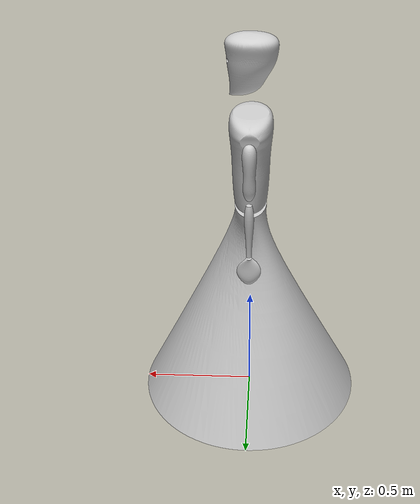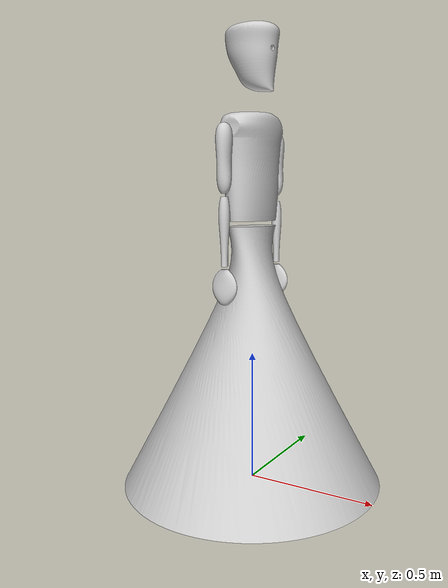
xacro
<?xml version="1.0" ?>

<robot name="human_model" xmlns:xacro="http://www.ros.org/wiki/xacro">

  <link name="world"/>

  <!-- box to world -->
  <joint name="world_joint" type="fixed">
    <origin xyz="0 0 0" rpy="0 0 0"/>
    <parent link="world"/>
    <child link="leg_ws"/>
  </joint>

  <!-- box link -->
  <link name="leg_ws">
    <collision>
      <origin xyz="0 0 0" rpy="0 0 0"/>
      <geometry>
        <mesh filename="package://human_model/meshes/leg_ws.STL" scale="0.001 0.001 0.001"/>
      </geometry>
    </collision>

    <visual>
      <origin xyz="0 0 0" rpy="0 0 0"/>
      <geometry>
        <mesh filename="package://human_model/meshes/leg_ws.STL" scale="0.001 0.001 0.001"/>
      </geometry>
      <material name="grey"/>
    </visual>

    <inertial>
      <mass value="1"/>
      <inertia ixx="100"  ixy="0"  ixz="0" iyy="100" iyz="0" izz="100" />
    </inertial>
  </link>

  <!-- model to box -->
  <joint name="leg_joint" type="fixed">
    <origin xyz="0 0 1.02" rpy="0 0 0"/>
    <parent link="leg_ws"/>
    <child link="body"/>
  </joint>

  <!-- model link -->
  <link name="body">
    <collision>
      <origin xyz="0 0 0" rpy="0 0 0"/>
      <geometry>
        <mesh filename="package://human_model/meshes/Body.STL" scale="0.001 0.001 0.001"/>
      </geometry>
    </collision>

    <visual>
      <origin xyz="0 0 0" rpy="0 0 0"/>
      <geometry>
        <mesh filename="package://human_model/meshes/Body.STL" scale="0.001 0.001 0.001"/>
      </geometry>
      <material name="grey"/>
    </visual>

    <inertial>
      <mass value="1e-5" />
      <origin xyz="0 0 0" rpy="0 0 0"/>
      <inertia ixx="1e-6" ixy="0" ixz="0" iyy="1e-6" iyz="0" izz="1e-6" />
    </inertial>
  </link>

  <!-- head to body -->
  <joint name="neck" type="revolute">
    <origin xyz="0 0 0.5" rpy="0 0 0"/>
    <parent link="body"/>
    <child link="head"/>

    <axis xyz="0 0 1"/>
    <limit effort="30" velocity="1.0" lower="-1.3" upper="1.3" />
  </joint>

  <!-- head link -->
  <link name="head">
    <collision>
      <origin xyz="0 0 0" rpy="0 0 0"/>
      <geometry>
        <mesh filename="package://human_model/meshes/Head.STL" scale="0.001 0.001 0.001"/>
      </geometry>
    </collision>

    <visual>
      <origin xyz="0 0 0" rpy="0 0 0"/>
      <geometry>
        <mesh filename="package://human_model/meshes/head.stl" scale="0.001 0.001 0.001"/>
      </geometry>
      <material name="grey"/>
    </visual>

    <inertial>
      <mass value="1e-5" />
      <origin xyz="0 0 0" rpy="0 0 0"/>
      <inertia ixx="1e-6" ixy="0" ixz="0" iyy="1e-6" iyz="0" izz="1e-6" />
    </inertial>
  </link>

  <!-- =============================LEFT ARM========================================== -->
  <!-- upper to body -->
  <joint name="left_shoulder" type="revolute">
    <origin xyz="0 0.2 0.35" rpy="0 0 0"/>
    <parent link="body"/>
    <child link="left_upper"/>

    <axis xyz="1 0 0"/>
    <limit effort="30" velocity="1.0" lower="-3" upper="3" />
  </joint>

  <!-- upper link -->
  <link name="left_upper">
    <collision>
      <origin xyz="0 0 0" rpy="0 0 0"/>
      <geometry>
        <mesh filename="package://human_model/meshes/Upper.STL" scale="0.001 0.001 0.001"/>
      </geometry>
    </collision>

    <visual>
      <origin xyz="0 0 0" rpy="0 0 0"/>
      <geometry>
        <mesh filename="package://human_model/meshes/Upper.STL" scale="0.001 0.001 0.001"/>
      </geometry>
      <material name="grey"/>
    </visual>

    <inertial>
      <mass value="1e-5" />
      <origin xyz="0 0 0" rpy="0 0 0"/>
      <inertia ixx="1e-6" ixy="0" ixz="0" iyy="1e-6" iyz="0" izz="1e-6" />
    </inertial>
  </link>

  <!-- lower to upper -->
  <joint name="left_elbow" type="revolute">
    <origin xyz="0 0 -0.275" rpy="0 0 0"/>
    <parent link="left_upper"/>
    <child link="left_lower"/>

    <axis xyz="0 1 0"/>
    <limit effort="30" velocity="1.0" lower="-2.35619" upper="0.0" />
  </joint>

  <!-- lower link -->
  <link name="left_lower">
    <collision>
      <origin xyz="0 0 0" rpy="0 0 0"/>
      <geometry>
        <mesh filename="package://human_model/meshes/Lower.STL" scale="0.001 0.001 0.001"/>
      </geometry>
    </collision>

    <visual>
      <origin xyz="0 0 0" rpy="0 0 0"/>
      <geometry>
        <mesh filename="package://human_model/meshes/Lower.STL" scale="0.001 0.001 0.001"/>
      </geometry>
      <material name="grey"/>
    </visual>

    <inertial>
      <mass value="1e-5" />
      <origin xyz="0 0 0" rpy="0 0 0"/>
      <inertia ixx="1e-6" ixy="0" ixz="0" iyy="1e-6" iyz="0" izz="1e-6" />
    </inertial>
  </link>

  <!-- hand to lower -->
  <joint name="left_wrist" type="revolute">
    <origin xyz="0 0 -0.26" rpy="0 0 0"/>
    <parent link="left_lower"/>
    <child link="left_hand"/>

    <axis xyz="0 1 0"/>
    <limit effort="30" velocity="1.0" lower="-1" upper="1" />
  </joint>

  <!-- hand link -->
  <link name="left_hand">
    <collision>
      <origin xyz="0 0 0" rpy="0 0 0"/>
      <geometry>
        <mesh filename="package://human_model/meshes/Hand.STL" scale="0.001 0.001 0.001"/>
      </geometry>
    </collision>

    <visual>
      <origin xyz="0 0 0" rpy="0 0 0"/>
      <geometry>
        <mesh filename="package://human_model/meshes/Hand.STL" scale="0.001 0.001 0.001"/>
      </geometry>
      <material name="grey"/>
    </visual>

    <inertial>
      <mass value="1e-5" />
      <origin xyz="0 0 0" rpy="0 0 0"/>
      <inertia ixx="1e-6" ixy="0" ixz="0" iyy="1e-6" iyz="0" izz="1e-6" />
    </inertial>
  </link>

  <!-- =============================RIGHT ARM========================================== -->
  <!-- upper to body -->
  <joint name="right_shoulder" type="revolute">
    <origin xyz="0 -0.2 0.35" rpy="0 0 0"/>
    <parent link="body"/>
    <child link="right_upper"/>

    <axis xyz="0 1 0"/>
    <limit effort="30" velocity="1.0" lower="-1" upper="1" />
  </joint>

  <!-- upper link -->
  <link name="right_upper">
    <collision>
      <origin xyz="0 0 0" rpy="0 0 0"/>
      <geometry>
        <mesh filename="package://human_model/meshes/Upper.STL" scale="0.001 0.001 0.001"/>
      </geometry>
    </collision>

    <visual>
      <origin xyz="0 0 0" rpy="0 0 0"/>
      <geometry>
        <mesh filename="package://human_model/meshes/Upper.STL" scale="0.001 0.001 0.001"/>
      </geometry>
      <material name="grey"/>
    </visual>

    <inertial>
      <mass value="1e-5" />
      <origin xyz="0 0 0" rpy="0 0 0"/>
      <inertia ixx="1e-6" ixy="0" ixz="0" iyy="1e-6" iyz="0" izz="1e-6" />
    </inertial>
  </link>

  <!-- lower to upper -->
  <joint name="right_elbow" type="revolute">
    <origin xyz="0 0 -0.26" rpy="0 0 0"/>
    <parent link="right_upper"/>
    <child link="right_lower"/>

    <axis xyz="0 1 0"/>
    <limit effort="30" velocity="1.0" lower="-1" upper="1" />
  </joint>

  <!-- lower link -->
  <link name="right_lower">
    <collision>
      <origin xyz="0 0 0" rpy="0 0 0"/>
      <geometry>
        <mesh filename="package://human_model/meshes/Lower.STL" scale="0.001 0.001 0.001"/>
      </geometry>
    </collision>

    <visual>
      <origin xyz="0 0 0" rpy="0 0 0"/>
      <geometry>
        <mesh filename="package://human_model/meshes/Lower.STL" scale="0.001 0.001 0.001"/>
      </geometry>
      <material name="grey"/>
    </visual>

    <inertial>
      <mass value="1e-5" />
      <origin xyz="0 0 0" rpy="0 0 0"/>
      <inertia ixx="1e-6" ixy="0" ixz="0" iyy="1e-6" iyz="0" izz="1e-6" />
    </inertial>
  </link>

  <!-- hand to lower -->
  <joint name="right_wrist" type="revolute">
    <origin xyz="0 0 -0.26" rpy="0 0 0"/>
    <parent link="right_lower"/>
    <child link="right_hand"/>

    <axis xyz="0 1 0"/>
    <limit effort="30" velocity="1.0" lower="-1" upper="1" />
  </joint>

  <!-- hand link -->
  <link name="right_hand">
    <collision>
      <origin xyz="0 0 0" rpy="0 0 0"/>
      <geometry>
        <mesh filename="package://human_model/meshes/Hand.STL" scale="0.001 0.001 0.001"/>
      </geometry>
    </collision>

    <visual>
      <origin xyz="0 0 0" rpy="0 0 0"/>
      <geometry>
        <mesh filename="package://human_model/meshes/Hand.STL" scale="0.001 0.001 0.001"/>
      </geometry>
      <material name="grey"/>
    </visual>

    <inertial>
      <mass value="1e-5" />
      <origin xyz="0 0 0" rpy="0 0 0"/>
      <inertia ixx="1e-6" ixy="0" ixz="0" iyy="1e-6" iyz="0" izz="1e-6" />
    </inertial>
  </link>

  <!-- Gazebo Plugins -->

  <!-- Colors -->
  <material name="blue">
    <color rgba="0.1 0.1 0.9 1"/>
  </material>

  <material name="grey">
    <color rgba="0.8 0.8 0.8 1"/>
  </material>

  <material name="red">
    <color rgba="0.9 0.1 0.1 1"/>
  </material>

  <material name="green">
    <color rgba="0.2 0.9 0.2 1"/>
  </material>

</robot>
